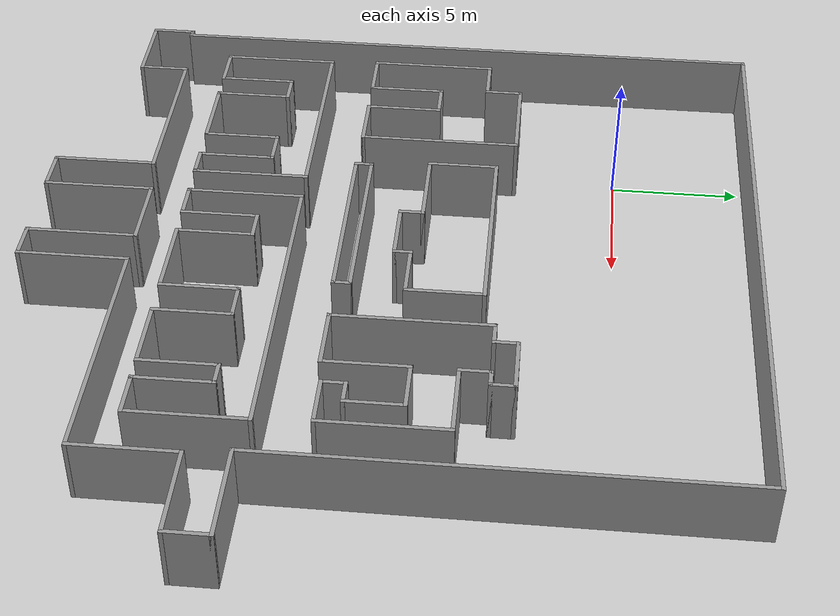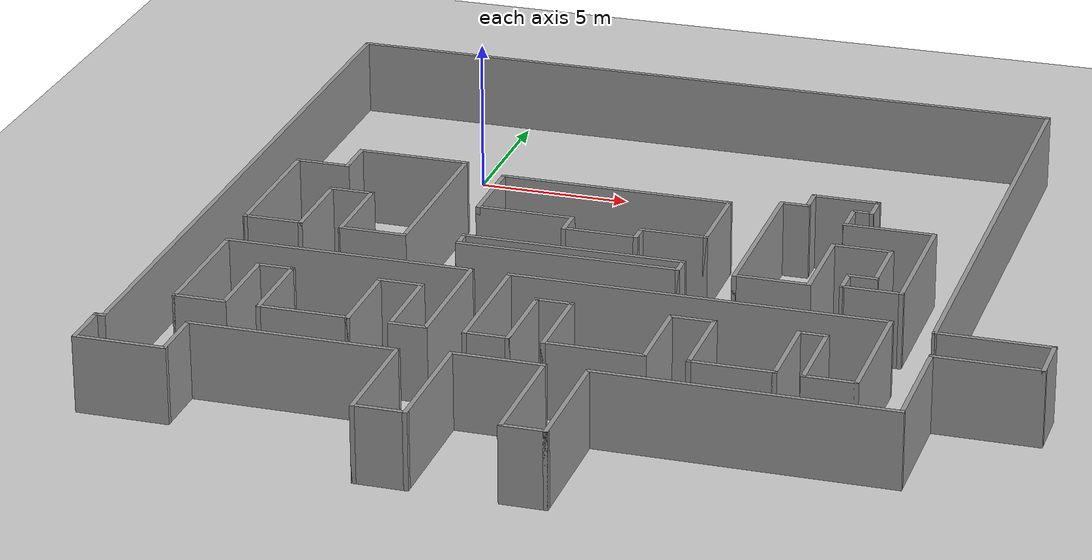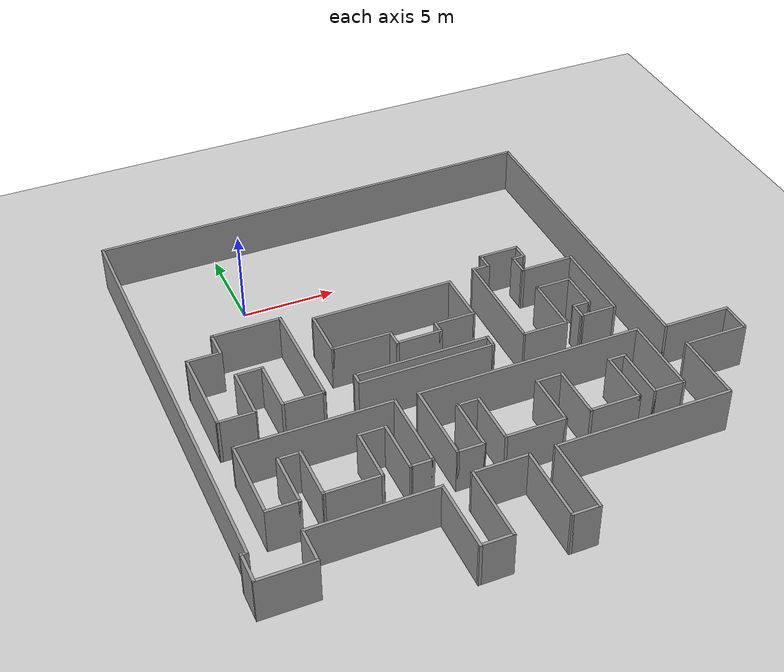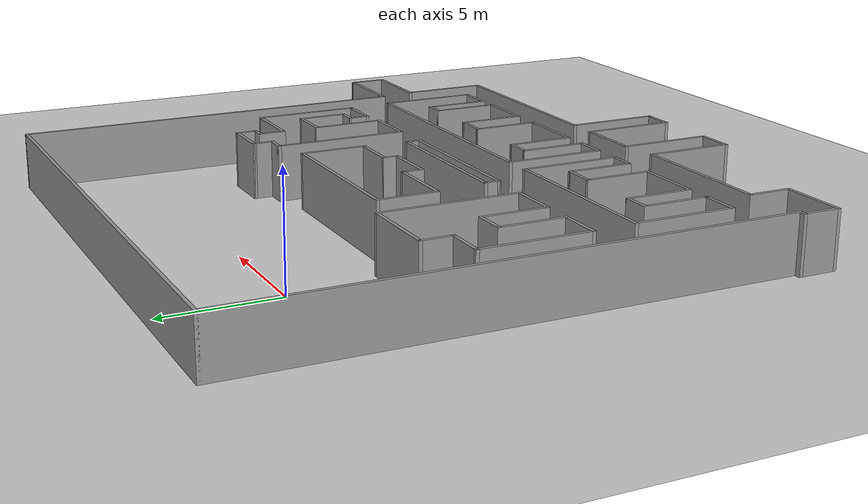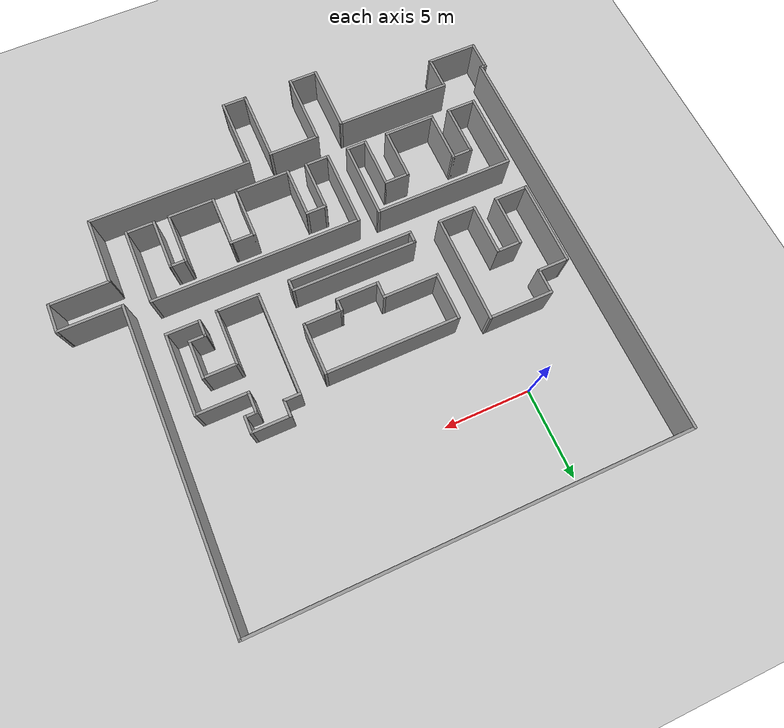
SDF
<sdf version="1.7">
 <world name="default">
  <model name="ground_plane">
   <static>1</static>
   <link name="link">
    <collision name="collision">
     <geometry><plane><normal>0 0 1</normal><size>100 100</size></plane></geometry>
     <surface>
      <contact><collide_bitmask>65535</collide_bitmask></contact>
      <friction><ode><mu>100</mu><mu2>50</mu2></ode></friction>
     </surface>
    </collision>
    <visual name="visual">
     <cast_shadows>0</cast_shadows>
     <geometry><plane><normal>0 0 1</normal><size>100 100</size></plane></geometry>
     <material>
      <script><uri>file://media/materials/scripts/gazebo.material</uri><name>Gazebo/Grey</name></script>
     </material>
    </visual>
   </link>
  </model>
  <model name="ACL_office_simple">
   <pose>7.7557 -8.2982 0 0 -0 0</pose>
   <link name="Wall_0">
    <collision name="Wall_0_Collision">
     <geometry><box><size>23.6998 0.15 2.5</size></box></geometry>
     <pose>0 0 1.25 0 -0 0</pose>
    </collision>
    <visual name="Wall_0_Visual">
     <pose>0 0 1.25 0 -0 0</pose>
     <geometry><box><size>23.6998 0.15 2.5</size></box></geometry>
     <material>
      <script><uri>file://media/materials/scripts/gazebo.material</uri><name>Gazebo/Grey</name></script>
      <ambient>1 1 1 1</ambient>
     </material>
     <meta><layer>0</layer></meta>
    </visual>
    <pose>-13.7248 1.80009 0 0 -0 -1.57078</pose>
   </link>
   <link name="Wall_10">
    <collision name="Wall_10_Collision">
     <geometry><box><size>9.5 0.15 2.5</size></box></geometry>
     <pose>0 0 1.25 0 -0 0</pose>
    </collision>
    <visual name="Wall_10_Visual">
     <pose>0 0 1.25 0 -0 0</pose>
     <geometry><box><size>9.5 0.15 2.5</size></box></geometry>
     <material>
      <script><uri>file://media/materials/scripts/gazebo.material</uri><name>Gazebo/Grey</name></script>
      <ambient>1 1 1 1</ambient>
     </material>
     <meta><layer>0</layer></meta>
    </visual>
    <pose>5.95001 -9.475 0 0 -0 3.14159</pose>
   </link>
   <link name="Wall_100">
    <collision name="Wall_100_Collision">
     <geometry><box><size>3 0.15 2.5</size></box></geometry>
     <pose>0 0 1.25 0 -0 0</pose>
    </collision>
    <visual name="Wall_100_Visual">
     <pose>0 0 1.25 0 -0 0</pose>
     <geometry><box><size>3 0.15 2.5</size></box></geometry>
     <material>
      <script><uri>file://media/materials/scripts/gazebo.material</uri><name>Gazebo/Grey</name></script>
      <ambient>1 1 1 1</ambient>
     </material>
     <meta><layer>0</layer></meta>
    </visual>
    <pose>2.02363 2.21088 0 0 -0 1.5708</pose>
   </link>
   <link name="Wall_101">
    <collision name="Wall_101_Collision">
     <geometry><box><size>7.7 0.15 2.5</size></box></geometry>
     <pose>0 0 1.25 0 -0 0</pose>
    </collision>
    <visual name="Wall_101_Visual">
     <pose>0 0 1.25 0 -0 0</pose>
     <geometry><box><size>7.7 0.15 2.5</size></box></geometry>
     <material>
      <script><uri>file://media/materials/scripts/gazebo.material</uri><name>Gazebo/Grey</name></script>
      <ambient>1 1 1 1</ambient>
     </material>
     <meta><layer>0</layer></meta>
    </visual>
    <pose>-1.75137 3.63588 0 0 -0 3.14159</pose>
   </link>
   <link name="Wall_11">
    <collision name="Wall_11_Collision">
     <geometry><box><size>4.25 0.15 2.5</size></box></geometry>
     <pose>0 0 1.25 0 -0 0</pose>
    </collision>
    <visual name="Wall_11_Visual">
     <pose>0 0 1.25 0 -0 0</pose>
     <geometry><box><size>4.25 0.15 2.5</size></box></geometry>
     <material>
      <script><uri>file://media/materials/scripts/gazebo.material</uri><name>Gazebo/Grey</name></script>
      <ambient>1 1 1 1</ambient>
     </material>
     <meta><layer>0</layer></meta>
    </visual>
    <pose>1.27501 -11.525 0 0 -0 -1.5708</pose>
   </link>
   <link name="Wall_12">
    <collision name="Wall_12_Collision">
     <geometry><box><size>1.5 0.15 2.5</size></box></geometry>
     <pose>0 0 1.25 0 -0 0</pose>
    </collision>
    <visual name="Wall_12_Visual">
     <pose>0 0 1.25 0 -0 0</pose>
     <geometry><box><size>1.5 0.15 2.5</size></box></geometry>
     <material>
      <script><uri>file://media/materials/scripts/gazebo.material</uri><name>Gazebo/Grey</name></script>
      <ambient>1 1 1 1</ambient>
     </material>
     <meta><layer>0</layer></meta>
    </visual>
    <pose>0.600008 -13.575 0 0 -0 3.14159</pose>
   </link>
   <link name="Wall_13">
    <collision name="Wall_13_Collision">
     <geometry><box><size>4.25 0.15 2.5</size></box></geometry>
     <pose>0 0 1.25 0 -0 0</pose>
    </collision>
    <visual name="Wall_13_Visual">
     <pose>0 0 1.25 0 -0 0</pose>
     <geometry><box><size>4.25 0.15 2.5</size></box></geometry>
     <material>
      <script><uri>file://media/materials/scripts/gazebo.material</uri><name>Gazebo/Grey</name></script>
      <ambient>1 1 1 1</ambient>
     </material>
     <meta><layer>0</layer></meta>
    </visual>
    <pose>-0.074992 -11.525 0 0 -0 1.5708</pose>
   </link>
   <link name="Wall_14">
    <collision name="Wall_14_Collision">
     <geometry><box><size>3 0.15 2.5</size></box></geometry>
     <pose>0 0 1.25 0 -0 0</pose>
    </collision>
    <visual name="Wall_14_Visual">
     <pose>0 0 1.25 0 -0 0</pose>
     <geometry><box><size>3 0.15 2.5</size></box></geometry>
     <material>
      <script><uri>file://media/materials/scripts/gazebo.material</uri><name>Gazebo/Grey</name></script>
      <ambient>1 1 1 1</ambient>
     </material>
     <meta><layer>0</layer></meta>
    </visual>
    <pose>-1.49999 -9.475 0 0 -0 3.14159</pose>
   </link>
   <link name="Wall_15">
    <collision name="Wall_15_Collision">
     <geometry><box><size>4.25 0.15 2.5</size></box></geometry>
     <pose>0 0 1.25 0 -0 0</pose>
    </collision>
    <visual name="Wall_15_Visual">
     <pose>0 0 1.25 0 -0 0</pose>
     <geometry><box><size>4.25 0.15 2.5</size></box></geometry>
     <material>
      <script><uri>file://media/materials/scripts/gazebo.material</uri><name>Gazebo/Grey</name></script>
      <ambient>1 1 1 1</ambient>
     </material>
     <meta><layer>0</layer></meta>
    </visual>
    <pose>-2.92499 -11.525 0 0 -0 -1.5708</pose>
   </link>
   <link name="Wall_16">
    <collision name="Wall_16_Collision">
     <geometry><box><size>1.75 0.15 2.5</size></box></geometry>
     <pose>0 0 1.25 0 -0 0</pose>
    </collision>
    <visual name="Wall_16_Visual">
     <pose>0 0 1.25 0 -0 0</pose>
     <geometry><box><size>1.75 0.15 2.5</size></box></geometry>
     <material>
      <script><uri>file://media/materials/scripts/gazebo.material</uri><name>Gazebo/Grey</name></script>
      <ambient>1 1 1 1</ambient>
     </material>
     <meta><layer>0</layer></meta>
    </visual>
    <pose>-3.72499 -13.575 0 0 -0 3.14159</pose>
   </link>
   <link name="Wall_17">
    <collision name="Wall_17_Collision">
     <geometry><box><size>4 0.15 2.5</size></box></geometry>
     <pose>0 0 1.25 0 -0 0</pose>
    </collision>
    <visual name="Wall_17_Visual">
     <pose>0 0 1.25 0 -0 0</pose>
     <geometry><box><size>4 0.15 2.5</size></box></geometry>
     <material>
      <script><uri>file://media/materials/scripts/gazebo.material</uri><name>Gazebo/Grey</name></script>
      <ambient>1 1 1 1</ambient>
     </material>
     <meta><layer>0</layer></meta>
    </visual>
    <pose>-4.52499 -11.65 0 0 -0 1.5708</pose>
   </link>
   <link name="Wall_18">
    <collision name="Wall_18_Collision">
     <geometry><box><size>6.75 0.15 2.5</size></box></geometry>
     <pose>0 0 1.25 0 -0 0</pose>
    </collision>
    <visual name="Wall_18_Visual">
     <pose>0 0 1.25 0 -0 0</pose>
     <geometry><box><size>6.75 0.15 2.5</size></box></geometry>
     <material>
      <script><uri>file://media/materials/scripts/gazebo.material</uri><name>Gazebo/Grey</name></script>
      <ambient>1 1 1 1</ambient>
     </material>
     <meta><layer>0</layer></meta>
    </visual>
    <pose>-7.82499 -9.725 0 0 -0 3.14159</pose>
   </link>
   <link name="Wall_19">
    <collision name="Wall_19_Collision">
     <geometry><box><size>2 0.15 2.5</size></box></geometry>
     <pose>0 0 1.25 0 -0 0</pose>
    </collision>
    <visual name="Wall_19_Visual">
     <pose>0 0 1.25 0 -0 0</pose>
     <geometry><box><size>2 0.15 2.5</size></box></geometry>
     <material>
      <script><uri>file://media/materials/scripts/gazebo.material</uri><name>Gazebo/Grey</name></script>
      <ambient>1 1 1 1</ambient>
     </material>
     <meta><layer>0</layer></meta>
    </visual>
    <pose>-11.125 -10.65 0 0 -0 -1.5708</pose>
   </link>
   <link name="Wall_2">
    <collision name="Wall_2_Collision">
     <geometry><box><size>24.25 0.15 2.5</size></box></geometry>
     <pose>0 0 1.25 0 -0 0</pose>
    </collision>
    <visual name="Wall_2_Visual">
     <pose>0 0 1.25 0 -0 0</pose>
     <geometry><box><size>24.25 0.15 2.5</size></box></geometry>
     <material>
      <script><uri>file://media/materials/scripts/gazebo.material</uri><name>Gazebo/Grey</name></script>
      <ambient>1 1 1 1</ambient>
     </material>
     <meta><layer>0</layer></meta>
    </visual>
    <pose>-1.67499 13.575 0 0 -0 0</pose>
   </link>
   <link name="Wall_20">
    <collision name="Wall_20_Collision">
     <geometry><box><size>3 0.15 2.5</size></box></geometry>
     <pose>0 0 1.25 0 -0 0</pose>
    </collision>
    <visual name="Wall_20_Visual">
     <pose>0 0 1.25 0 -0 0</pose>
     <geometry><box><size>3 0.15 2.5</size></box></geometry>
     <material>
      <script><uri>file://media/materials/scripts/gazebo.material</uri><name>Gazebo/Grey</name></script>
      <ambient>1 1 1 1</ambient>
     </material>
     <meta><layer>0</layer></meta>
    </visual>
    <pose>-12.55 -11.575 0 0 -0 3.14159</pose>
   </link>
   <link name="Wall_23">
    <collision name="Wall_23_Collision">
     <geometry><box><size>1.75 0.15 2.5</size></box></geometry>
     <pose>0 0 1.25 0 -0 0</pose>
    </collision>
    <visual name="Wall_23_Visual">
     <pose>0 0 1.25 0 -0 0</pose>
     <geometry><box><size>1.75 0.15 2.5</size></box></geometry>
     <material>
      <script><uri>file://media/materials/scripts/gazebo.material</uri><name>Gazebo/Grey</name></script>
      <ambient>1 1 1 1</ambient>
     </material>
     <meta><layer>0</layer></meta>
    </visual>
    <pose>-13.9748 -10.7749 0 0 -0 1.57059</pose>
   </link>
   <link name="Wall_24">
    <collision name="Wall_24_Collision">
     <geometry><box><size>0.4 0.15 2.5</size></box></geometry>
     <pose>0 0 1.25 0 -0 0</pose>
    </collision>
    <visual name="Wall_24_Visual">
     <pose>0 0 1.25 0 -0 0</pose>
     <geometry><box><size>0.4 0.15 2.5</size></box></geometry>
     <material>
      <script><uri>file://media/materials/scripts/gazebo.material</uri><name>Gazebo/Grey</name></script>
      <ambient>1 1 1 1</ambient>
     </material>
     <meta><layer>0</layer></meta>
    </visual>
    <pose>-13.8497 -9.97483 0 0 -0 0</pose>
   </link>
   <link name="Wall_27">
    <collision name="Wall_27_Collision">
     <geometry><box><size>4.5 0.15 2.5</size></box></geometry>
     <pose>0 0 1.25 0 -0 0</pose>
    </collision>
    <visual name="Wall_27_Visual">
     <pose>0 0 1.25 0 -0 0</pose>
     <geometry><box><size>4.5 0.15 2.5</size></box></geometry>
     <material>
      <script><uri>file://media/materials/scripts/gazebo.material</uri><name>Gazebo/Grey</name></script>
      <ambient>1 1 1 1</ambient>
     </material>
     <meta><layer>0</layer></meta>
    </visual>
    <pose>-12.2186 -5.84008 0 0 -0 -1.5708</pose>
   </link>
   <link name="Wall_28">
    <collision name="Wall_28_Collision">
     <geometry><box><size>1.75 0.15 2.5</size></box></geometry>
     <pose>0 0 1.25 0 -0 0</pose>
    </collision>
    <visual name="Wall_28_Visual">
     <pose>0 0 1.25 0 -0 0</pose>
     <geometry><box><size>1.75 0.15 2.5</size></box></geometry>
     <material>
      <script><uri>file://media/materials/scripts/gazebo.material</uri><name>Gazebo/Grey</name></script>
      <ambient>1 1 1 1</ambient>
     </material>
     <meta><layer>0</layer></meta>
    </visual>
    <pose>-11.4186 -8.01508 0 0 -0 0</pose>
   </link>
   <link name="Wall_29">
    <collision name="Wall_29_Collision">
     <geometry><box><size>3 0.15 2.5</size></box></geometry>
     <pose>0 0 1.25 0 -0 0</pose>
    </collision>
    <visual name="Wall_29_Visual">
     <pose>0 0 1.25 0 -0 0</pose>
     <geometry><box><size>3 0.15 2.5</size></box></geometry>
     <material>
      <script><uri>file://media/materials/scripts/gazebo.material</uri><name>Gazebo/Grey</name></script>
      <ambient>1 1 1 1</ambient>
     </material>
     <meta><layer>0</layer></meta>
    </visual>
    <pose>-10.6186 -6.59008 0 0 -0 1.5708</pose>
   </link>
   <link name="Wall_3">
    <collision name="Wall_3_Collision">
     <geometry><box><size>17.75 0.15 2.5</size></box></geometry>
     <pose>0 0 1.25 0 -0 0</pose>
    </collision>
    <visual name="Wall_3_Visual">
     <pose>0 0 1.25 0 -0 0</pose>
     <geometry><box><size>17.75 0.15 2.5</size></box></geometry>
     <material>
      <script><uri>file://media/materials/scripts/gazebo.material</uri><name>Gazebo/Grey</name></script>
      <ambient>1 1 1 1</ambient>
     </material>
     <meta><layer>0</layer></meta>
    </visual>
    <pose>10.375 4.775 0 0 -0 -1.5708</pose>
   </link>
   <link name="Wall_30">
    <collision name="Wall_30_Collision">
     <geometry><box><size>1.25 0.15 2.5</size></box></geometry>
     <pose>0 0 1.25 0 -0 0</pose>
    </collision>
    <visual name="Wall_30_Visual">
     <pose>0 0 1.25 0 -0 0</pose>
     <geometry><box><size>1.25 0.15 2.5</size></box></geometry>
     <material>
      <script><uri>file://media/materials/scripts/gazebo.material</uri><name>Gazebo/Grey</name></script>
      <ambient>1 1 1 1</ambient>
     </material>
     <meta><layer>0</layer></meta>
    </visual>
    <pose>-10.0686 -5.16508 0 0 -0 0</pose>
   </link>
   <link name="Wall_31">
    <collision name="Wall_31_Collision">
     <geometry><box><size>3 0.15 2.5</size></box></geometry>
     <pose>0 0 1.25 0 -0 0</pose>
    </collision>
    <visual name="Wall_31_Visual">
     <pose>0 0 1.25 0 -0 0</pose>
     <geometry><box><size>3 0.15 2.5</size></box></geometry>
     <material>
      <script><uri>file://media/materials/scripts/gazebo.material</uri><name>Gazebo/Grey</name></script>
      <ambient>1 1 1 1</ambient>
     </material>
     <meta><layer>0</layer></meta>
    </visual>
    <pose>-9.51863 -6.59008 0 0 -0 -1.5708</pose>
   </link>
   <link name="Wall_32">
    <collision name="Wall_32_Collision">
     <geometry><box><size>3 0.15 2.5</size></box></geometry>
     <pose>0 0 1.25 0 -0 0</pose>
    </collision>
    <visual name="Wall_32_Visual">
     <pose>0 0 1.25 0 -0 0</pose>
     <geometry><box><size>3 0.15 2.5</size></box></geometry>
     <material>
      <script><uri>file://media/materials/scripts/gazebo.material</uri><name>Gazebo/Grey</name></script>
      <ambient>1 1 1 1</ambient>
     </material>
     <meta><layer>0</layer></meta>
    </visual>
    <pose>-8.09363 -8.01508 0 0 -0 0</pose>
   </link>
   <link name="Wall_33">
    <collision name="Wall_33_Collision">
     <geometry><box><size>3 0.15 2.5</size></box></geometry>
     <pose>0 0 1.25 0 -0 0</pose>
    </collision>
    <visual name="Wall_33_Visual">
     <pose>0 0 1.25 0 -0 0</pose>
     <geometry><box><size>3 0.15 2.5</size></box></geometry>
     <material>
      <script><uri>file://media/materials/scripts/gazebo.material</uri><name>Gazebo/Grey</name></script>
      <ambient>1 1 1 1</ambient>
     </material>
     <meta><layer>0</layer></meta>
    </visual>
    <pose>-6.66863 -6.59008 0 0 -0 1.5708</pose>
   </link>
   <link name="Wall_34">
    <collision name="Wall_34_Collision">
     <geometry><box><size>1.5 0.15 2.5</size></box></geometry>
     <pose>0 0 1.25 0 -0 0</pose>
    </collision>
    <visual name="Wall_34_Visual">
     <pose>0 0 1.25 0 -0 0</pose>
     <geometry><box><size>1.5 0.15 2.5</size></box></geometry>
     <material>
      <script><uri>file://media/materials/scripts/gazebo.material</uri><name>Gazebo/Grey</name></script>
      <ambient>1 1 1 1</ambient>
     </material>
     <meta><layer>0</layer></meta>
    </visual>
    <pose>-5.99363 -5.16508 0 0 -0 0</pose>
   </link>
   <link name="Wall_35">
    <collision name="Wall_35_Collision">
     <geometry><box><size>3 0.15 2.5</size></box></geometry>
     <pose>0 0 1.25 0 -0 0</pose>
    </collision>
    <visual name="Wall_35_Visual">
     <pose>0 0 1.25 0 -0 0</pose>
     <geometry><box><size>3 0.15 2.5</size></box></geometry>
     <material>
      <script><uri>file://media/materials/scripts/gazebo.material</uri><name>Gazebo/Grey</name></script>
      <ambient>1 1 1 1</ambient>
     </material>
     <meta><layer>0</layer></meta>
    </visual>
    <pose>-5.31863 -6.59008 0 0 -0 -1.5708</pose>
   </link>
   <link name="Wall_36">
    <collision name="Wall_36_Collision">
     <geometry><box><size>1.25 0.15 2.5</size></box></geometry>
     <pose>0 0 1.25 0 -0 0</pose>
    </collision>
    <visual name="Wall_36_Visual">
     <pose>0 0 1.25 0 -0 0</pose>
     <geometry><box><size>1.25 0.15 2.5</size></box></geometry>
     <material>
      <script><uri>file://media/materials/scripts/gazebo.material</uri><name>Gazebo/Grey</name></script>
      <ambient>1 1 1 1</ambient>
     </material>
     <meta><layer>0</layer></meta>
    </visual>
    <pose>-4.76863 -8.01508 0 0 -0 0</pose>
   </link>
   <link name="Wall_37">
    <collision name="Wall_37_Collision">
     <geometry><box><size>4.5 0.15 2.5</size></box></geometry>
     <pose>0 0 1.25 0 -0 0</pose>
    </collision>
    <visual name="Wall_37_Visual">
     <pose>0 0 1.25 0 -0 0</pose>
     <geometry><box><size>4.5 0.15 2.5</size></box></geometry>
     <material>
      <script><uri>file://media/materials/scripts/gazebo.material</uri><name>Gazebo/Grey</name></script>
      <ambient>1 1 1 1</ambient>
     </material>
     <meta><layer>0</layer></meta>
    </visual>
    <pose>-4.21863 -5.84008 0 0 -0 1.5708</pose>
   </link>
   <link name="Wall_38">
    <collision name="Wall_38_Collision">
     <geometry><box><size>8.15 0.15 2.5</size></box></geometry>
     <pose>0 0 1.25 0 -0 0</pose>
    </collision>
    <visual name="Wall_38_Visual">
     <pose>0 0 1.25 0 -0 0</pose>
     <geometry><box><size>8.15 0.15 2.5</size></box></geometry>
     <material>
      <script><uri>file://media/materials/scripts/gazebo.material</uri><name>Gazebo/Grey</name></script>
      <ambient>1 1 1 1</ambient>
     </material>
     <meta><layer>0</layer></meta>
    </visual>
    <pose>-8.21863 -3.66508 0 0 -0 3.14159</pose>
   </link>
   <link name="Wall_40">
    <collision name="Wall_40_Collision">
     <geometry><box><size>4.5 0.15 2.5</size></box></geometry>
     <pose>0 0 1.25 0 -0 0</pose>
    </collision>
    <visual name="Wall_40_Visual">
     <pose>0 0 1.25 0 -0 0</pose>
     <geometry><box><size>4.5 0.15 2.5</size></box></geometry>
     <material>
      <script><uri>file://media/materials/scripts/gazebo.material</uri><name>Gazebo/Grey</name></script>
      <ambient>1 1 1 1</ambient>
     </material>
     <meta><layer>0</layer></meta>
    </visual>
    <pose>-2.99251 -5.83118 0 0 -0 -1.5708</pose>
   </link>
   <link name="Wall_41">
    <collision name="Wall_41_Collision">
     <geometry><box><size>1.5 0.15 2.5</size></box></geometry>
     <pose>0 0 1.25 0 -0 0</pose>
    </collision>
    <visual name="Wall_41_Visual">
     <pose>0 0 1.25 0 -0 0</pose>
     <geometry><box><size>1.5 0.15 2.5</size></box></geometry>
     <material>
      <script><uri>file://media/materials/scripts/gazebo.material</uri><name>Gazebo/Grey</name></script>
      <ambient>1 1 1 1</ambient>
     </material>
     <meta><layer>0</layer></meta>
    </visual>
    <pose>-2.31751 -8.00618 0 0 -0 0</pose>
   </link>
   <link name="Wall_42">
    <collision name="Wall_42_Collision">
     <geometry><box><size>3 0.15 2.5</size></box></geometry>
     <pose>0 0 1.25 0 -0 0</pose>
    </collision>
    <visual name="Wall_42_Visual">
     <pose>0 0 1.25 0 -0 0</pose>
     <geometry><box><size>3 0.15 2.5</size></box></geometry>
     <material>
      <script><uri>file://media/materials/scripts/gazebo.material</uri><name>Gazebo/Grey</name></script>
      <ambient>1 1 1 1</ambient>
     </material>
     <meta><layer>0</layer></meta>
    </visual>
    <pose>-1.64251 -6.58118 0 0 -0 1.5708</pose>
   </link>
   <link name="Wall_43">
    <collision name="Wall_43_Collision">
     <geometry><box><size>1.25 0.15 2.5</size></box></geometry>
     <pose>0 0 1.25 0 -0 0</pose>
    </collision>
    <visual name="Wall_43_Visual">
     <pose>0 0 1.25 0 -0 0</pose>
     <geometry><box><size>1.25 0.15 2.5</size></box></geometry>
     <material>
      <script><uri>file://media/materials/scripts/gazebo.material</uri><name>Gazebo/Grey</name></script>
      <ambient>1 1 1 1</ambient>
     </material>
     <meta><layer>0</layer></meta>
    </visual>
    <pose>-1.09251 -5.15618 0 0 -0 0</pose>
   </link>
   <link name="Wall_44">
    <collision name="Wall_44_Collision">
     <geometry><box><size>3 0.15 2.5</size></box></geometry>
     <pose>0 0 1.25 0 -0 0</pose>
    </collision>
    <visual name="Wall_44_Visual">
     <pose>0 0 1.25 0 -0 0</pose>
     <geometry><box><size>3 0.15 2.5</size></box></geometry>
     <material>
      <script><uri>file://media/materials/scripts/gazebo.material</uri><name>Gazebo/Grey</name></script>
      <ambient>1 1 1 1</ambient>
     </material>
     <meta><layer>0</layer></meta>
    </visual>
    <pose>-0.542511 -6.58118 0 0 -0 -1.5708</pose>
   </link>
   <link name="Wall_45">
    <collision name="Wall_45_Collision">
     <geometry><box><size>3.25 0.15 2.5</size></box></geometry>
     <pose>0 0 1.25 0 -0 0</pose>
    </collision>
    <visual name="Wall_45_Visual">
     <pose>0 0 1.25 0 -0 0</pose>
     <geometry><box><size>3.25 0.15 2.5</size></box></geometry>
     <material>
      <script><uri>file://media/materials/scripts/gazebo.material</uri><name>Gazebo/Grey</name></script>
      <ambient>1 1 1 1</ambient>
     </material>
     <meta><layer>0</layer></meta>
    </visual>
    <pose>1.00749 -8.00618 0 0 -0 0</pose>
   </link>
   <link name="Wall_46">
    <collision name="Wall_46_Collision">
     <geometry><box><size>3 0.15 2.5</size></box></geometry>
     <pose>0 0 1.25 0 -0 0</pose>
    </collision>
    <visual name="Wall_46_Visual">
     <pose>0 0 1.25 0 -0 0</pose>
     <geometry><box><size>3 0.15 2.5</size></box></geometry>
     <material>
      <script><uri>file://media/materials/scripts/gazebo.material</uri><name>Gazebo/Grey</name></script>
      <ambient>1 1 1 1</ambient>
     </material>
     <meta><layer>0</layer></meta>
    </visual>
    <pose>2.55749 -6.58118 0 0 -0 1.5708</pose>
   </link>
   <link name="Wall_47">
    <collision name="Wall_47_Collision">
     <geometry><box><size>1.5 0.15 2.5</size></box></geometry>
     <pose>0 0 1.25 0 -0 0</pose>
    </collision>
    <visual name="Wall_47_Visual">
     <pose>0 0 1.25 0 -0 0</pose>
     <geometry><box><size>1.5 0.15 2.5</size></box></geometry>
     <material>
      <script><uri>file://media/materials/scripts/gazebo.material</uri><name>Gazebo/Grey</name></script>
      <ambient>1 1 1 1</ambient>
     </material>
     <meta><layer>0</layer></meta>
    </visual>
    <pose>3.23249 -5.15618 0 0 -0 0</pose>
   </link>
   <link name="Wall_48">
    <collision name="Wall_48_Collision">
     <geometry><box><size>3 0.15 2.5</size></box></geometry>
     <pose>0 0 1.25 0 -0 0</pose>
    </collision>
    <visual name="Wall_48_Visual">
     <pose>0 0 1.25 0 -0 0</pose>
     <geometry><box><size>3 0.15 2.5</size></box></geometry>
     <material>
      <script><uri>file://media/materials/scripts/gazebo.material</uri><name>Gazebo/Grey</name></script>
      <ambient>1 1 1 1</ambient>
     </material>
     <meta><layer>0</layer></meta>
    </visual>
    <pose>3.90749 -6.58118 0 0 -0 -1.5708</pose>
   </link>
   <link name="Wall_49">
    <collision name="Wall_49_Collision">
     <geometry><box><size>2.75 0.15 2.5</size></box></geometry>
     <pose>0 0 1.25 0 -0 0</pose>
    </collision>
    <visual name="Wall_49_Visual">
     <pose>0 0 1.25 0 -0 0</pose>
     <geometry><box><size>2.75 0.15 2.5</size></box></geometry>
     <material>
      <script><uri>file://media/materials/scripts/gazebo.material</uri><name>Gazebo/Grey</name></script>
      <ambient>1 1 1 1</ambient>
     </material>
     <meta><layer>0</layer></meta>
    </visual>
    <pose>5.20749 -8.00618 0 0 -0 0</pose>
   </link>
   <link name="Wall_50">
    <collision name="Wall_50_Collision">
     <geometry><box><size>3 0.15 2.5</size></box></geometry>
     <pose>0 0 1.25 0 -0 0</pose>
    </collision>
    <visual name="Wall_50_Visual">
     <pose>0 0 1.25 0 -0 0</pose>
     <geometry><box><size>3 0.15 2.5</size></box></geometry>
     <material>
      <script><uri>file://media/materials/scripts/gazebo.material</uri><name>Gazebo/Grey</name></script>
      <ambient>1 1 1 1</ambient>
     </material>
     <meta><layer>0</layer></meta>
    </visual>
    <pose>6.50749 -6.58118 0 0 -0 1.5708</pose>
   </link>
   <link name="Wall_51">
    <collision name="Wall_51_Collision">
     <geometry><box><size>1 0.15 2.5</size></box></geometry>
     <pose>0 0 1.25 0 -0 0</pose>
    </collision>
    <visual name="Wall_51_Visual">
     <pose>0 0 1.25 0 -0 0</pose>
     <geometry><box><size>1 0.15 2.5</size></box></geometry>
     <material>
      <script><uri>file://media/materials/scripts/gazebo.material</uri><name>Gazebo/Grey</name></script>
      <ambient>1 1 1 1</ambient>
     </material>
     <meta><layer>0</layer></meta>
    </visual>
    <pose>6.93249 -5.15618 0 0 -0 0</pose>
   </link>
   <link name="Wall_52">
    <collision name="Wall_52_Collision">
     <geometry><box><size>3 0.15 2.5</size></box></geometry>
     <pose>0 0 1.25 0 -0 0</pose>
    </collision>
    <visual name="Wall_52_Visual">
     <pose>0 0 1.25 0 -0 0</pose>
     <geometry><box><size>3 0.15 2.5</size></box></geometry>
     <material>
      <script><uri>file://media/materials/scripts/gazebo.material</uri><name>Gazebo/Grey</name></script>
      <ambient>1 1 1 1</ambient>
     </material>
     <meta><layer>0</layer></meta>
    </visual>
    <pose>7.35749 -6.58118 0 0 -0 -1.5708</pose>
   </link>
   <link name="Wall_53">
    <collision name="Wall_53_Collision">
     <geometry><box><size>1.75 0.15 2.5</size></box></geometry>
     <pose>0 0 1.25 0 -0 0</pose>
    </collision>
    <visual name="Wall_53_Visual">
     <pose>0 0 1.25 0 -0 0</pose>
     <geometry><box><size>1.75 0.15 2.5</size></box></geometry>
     <material>
      <script><uri>file://media/materials/scripts/gazebo.material</uri><name>Gazebo/Grey</name></script>
      <ambient>1 1 1 1</ambient>
     </material>
     <meta><layer>0</layer></meta>
    </visual>
    <pose>8.15749 -8.00618 0 0 -0 0</pose>
   </link>
   <link name="Wall_54">
    <collision name="Wall_54_Collision">
     <geometry><box><size>4.5 0.15 2.5</size></box></geometry>
     <pose>0 0 1.25 0 -0 0</pose>
    </collision>
    <visual name="Wall_54_Visual">
     <pose>0 0 1.25 0 -0 0</pose>
     <geometry><box><size>4.5 0.15 2.5</size></box></geometry>
     <material>
      <script><uri>file://media/materials/scripts/gazebo.material</uri><name>Gazebo/Grey</name></script>
      <ambient>1 1 1 1</ambient>
     </material>
     <meta><layer>0</layer></meta>
    </visual>
    <pose>8.95749 -5.83118 0 0 -0 1.5708</pose>
   </link>
   <link name="Wall_55">
    <collision name="Wall_55_Collision">
     <geometry><box><size>12.1 0.15 2.5</size></box></geometry>
     <pose>0 0 1.25 0 -0 0</pose>
    </collision>
    <visual name="Wall_55_Visual">
     <pose>0 0 1.25 0 -0 0</pose>
     <geometry><box><size>12.1 0.15 2.5</size></box></geometry>
     <material>
      <script><uri>file://media/materials/scripts/gazebo.material</uri><name>Gazebo/Grey</name></script>
      <ambient>1 1 1 1</ambient>
     </material>
     <meta><layer>0</layer></meta>
    </visual>
    <pose>2.98249 -3.65618 0 0 -0 3.14159</pose>
   </link>
   <link name="Wall_57">
    <collision name="Wall_57_Collision">
     <geometry><box><size>0.75 0.15 2.5</size></box></geometry>
     <pose>0 0 1.25 0 -0 0</pose>
    </collision>
    <visual name="Wall_57_Visual">
     <pose>0 0 1.25 0 -0 0</pose>
     <geometry><box><size>0.75 0.15 2.5</size></box></geometry>
     <material>
      <script><uri>file://media/materials/scripts/gazebo.material</uri><name>Gazebo/Grey</name></script>
      <ambient>1 1 1 1</ambient>
     </material>
     <meta><layer>0</layer></meta>
    </visual>
    <pose>-5.25106 -1.52796 0 0 -0 -1.5708</pose>
   </link>
   <link name="Wall_58">
    <collision name="Wall_58_Collision">
     <geometry><box><size>7.25 0.15 2.5</size></box></geometry>
     <pose>0 0 1.25 0 -0 0</pose>
    </collision>
    <visual name="Wall_58_Visual">
     <pose>0 0 1.25 0 -0 0</pose>
     <geometry><box><size>7.25 0.15 2.5</size></box></geometry>
     <material>
      <script><uri>file://media/materials/scripts/gazebo.material</uri><name>Gazebo/Grey</name></script>
      <ambient>1 1 1 1</ambient>
     </material>
     <meta><layer>0</layer></meta>
    </visual>
    <pose>-1.70106 -1.82796 0 0 -0 0</pose>
   </link>
   <link name="Wall_59">
    <collision name="Wall_59_Collision">
     <geometry><box><size>0.75 0.15 2.5</size></box></geometry>
     <pose>0 0 1.25 0 -0 0</pose>
    </collision>
    <visual name="Wall_59_Visual">
     <pose>0 0 1.25 0 -0 0</pose>
     <geometry><box><size>0.75 0.15 2.5</size></box></geometry>
     <material>
      <script><uri>file://media/materials/scripts/gazebo.material</uri><name>Gazebo/Grey</name></script>
      <ambient>1 1 1 1</ambient>
     </material>
     <meta><layer>0</layer></meta>
    </visual>
    <pose>1.84894 -1.52796 0 0 -0 1.5708</pose>
   </link>
   <link name="Wall_6">
    <collision name="Wall_6_Collision">
     <geometry><box><size>3.75 0.15 2.5</size></box></geometry>
     <pose>0 0 1.25 0 -0 0</pose>
    </collision>
    <visual name="Wall_6_Visual">
     <pose>0 0 1.25 0 -0 0</pose>
     <geometry><box><size>3.75 0.15 2.5</size></box></geometry>
     <material>
      <script><uri>file://media/materials/scripts/gazebo.material</uri><name>Gazebo/Grey</name></script>
      <ambient>1 1 1 1</ambient>
     </material>
     <meta><layer>0</layer></meta>
    </visual>
    <pose>12.175 -4.025 0 0 -0 0</pose>
   </link>
   <link name="Wall_60">
    <collision name="Wall_60_Collision">
     <geometry><box><size>7.25 0.15 2.5</size></box></geometry>
     <pose>0 0 1.25 0 -0 0</pose>
    </collision>
    <visual name="Wall_60_Visual">
     <pose>0 0 1.25 0 -0 0</pose>
     <geometry><box><size>7.25 0.15 2.5</size></box></geometry>
     <material>
      <script><uri>file://media/materials/scripts/gazebo.material</uri><name>Gazebo/Grey</name></script>
      <ambient>1 1 1 1</ambient>
     </material>
     <meta><layer>0</layer></meta>
    </visual>
    <pose>-1.70106 -1.22796 0 0 -0 3.14159</pose>
   </link>
   <link name="Wall_64">
    <collision name="Wall_64_Collision">
     <geometry><box><size>4.89992 0.15 2.5</size></box></geometry>
     <pose>0 0 1.25 0 -0 0</pose>
    </collision>
    <visual name="Wall_64_Visual">
     <pose>0 0 1.25 0 -0 0</pose>
     <geometry><box><size>4.89992 0.15 2.5</size></box></geometry>
     <material>
      <script><uri>file://media/materials/scripts/gazebo.material</uri><name>Gazebo/Grey</name></script>
      <ambient>1 1 1 1</ambient>
     </material>
     <meta><layer>0</layer></meta>
    </visual>
    <pose>-12.3478 0.610215 0 0 -0 -1.57087</pose>
   </link>
   <link name="Wall_65">
    <collision name="Wall_65_Collision">
     <geometry><box><size>2 0.15 2.5</size></box></geometry>
     <pose>0 0 1.25 0 -0 0</pose>
    </collision>
    <visual name="Wall_65_Visual">
     <pose>0 0 1.25 0 -0 0</pose>
     <geometry><box><size>2 0.15 2.5</size></box></geometry>
     <material>
      <script><uri>file://media/materials/scripts/gazebo.material</uri><name>Gazebo/Grey</name></script>
      <ambient>1 1 1 1</ambient>
     </material>
     <meta><layer>0</layer></meta>
    </visual>
    <pose>-11.423 -1.76474 0 0 -0 0</pose>
   </link>
   <link name="Wall_66">
    <collision name="Wall_66_Collision">
     <geometry><box><size>3 0.15 2.5</size></box></geometry>
     <pose>0 0 1.25 0 -0 0</pose>
    </collision>
    <visual name="Wall_66_Visual">
     <pose>0 0 1.25 0 -0 0</pose>
     <geometry><box><size>3 0.15 2.5</size></box></geometry>
     <material>
      <script><uri>file://media/materials/scripts/gazebo.material</uri><name>Gazebo/Grey</name></script>
      <ambient>1 1 1 1</ambient>
     </material>
     <meta><layer>0</layer></meta>
    </visual>
    <pose>-10.498 -0.339742 0 0 -0 1.5708</pose>
   </link>
   <link name="Wall_67">
    <collision name="Wall_67_Collision">
     <geometry><box><size>1.5 0.15 2.5</size></box></geometry>
     <pose>0 0 1.25 0 -0 0</pose>
    </collision>
    <visual name="Wall_67_Visual">
     <pose>0 0 1.25 0 -0 0</pose>
     <geometry><box><size>1.5 0.15 2.5</size></box></geometry>
     <material>
      <script><uri>file://media/materials/scripts/gazebo.material</uri><name>Gazebo/Grey</name></script>
      <ambient>1 1 1 1</ambient>
     </material>
     <meta><layer>0</layer></meta>
    </visual>
    <pose>-9.823 1.08526 0 0 -0 0</pose>
   </link>
   <link name="Wall_68">
    <collision name="Wall_68_Collision">
     <geometry><box><size>3 0.15 2.5</size></box></geometry>
     <pose>0 0 1.25 0 -0 0</pose>
    </collision>
    <visual name="Wall_68_Visual">
     <pose>0 0 1.25 0 -0 0</pose>
     <geometry><box><size>3 0.15 2.5</size></box></geometry>
     <material>
      <script><uri>file://media/materials/scripts/gazebo.material</uri><name>Gazebo/Grey</name></script>
      <ambient>1 1 1 1</ambient>
     </material>
     <meta><layer>0</layer></meta>
    </visual>
    <pose>-9.14799 -0.339742 0 0 -0 -1.5708</pose>
   </link>
   <link name="Wall_69">
    <collision name="Wall_69_Collision">
     <geometry><box><size>2.25 0.15 2.5</size></box></geometry>
     <pose>0 0 1.25 0 -0 0</pose>
    </collision>
    <visual name="Wall_69_Visual">
     <pose>0 0 1.25 0 -0 0</pose>
     <geometry><box><size>2.25 0.15 2.5</size></box></geometry>
     <material>
      <script><uri>file://media/materials/scripts/gazebo.material</uri><name>Gazebo/Grey</name></script>
      <ambient>1 1 1 1</ambient>
     </material>
     <meta><layer>0</layer></meta>
    </visual>
    <pose>-8.09799 -1.76474 0 0 -0 0</pose>
   </link>
   <link name="Wall_7">
    <collision name="Wall_7_Collision">
     <geometry><box><size>1.75 0.15 2.5</size></box></geometry>
     <pose>0 0 1.25 0 -0 0</pose>
    </collision>
    <visual name="Wall_7_Visual">
     <pose>0 0 1.25 0 -0 0</pose>
     <geometry><box><size>1.75 0.15 2.5</size></box></geometry>
     <material>
      <script><uri>file://media/materials/scripts/gazebo.material</uri><name>Gazebo/Grey</name></script>
      <ambient>1 1 1 1</ambient>
     </material>
     <meta><layer>0</layer></meta>
    </visual>
    <pose>13.975 -4.825 0 0 -0 -1.5708</pose>
   </link>
   <link name="Wall_70">
    <collision name="Wall_70_Collision">
     <geometry><box><size>6.25 0.15 2.5</size></box></geometry>
     <pose>0 0 1.25 0 -0 0</pose>
    </collision>
    <visual name="Wall_70_Visual">
     <pose>0 0 1.25 0 -0 0</pose>
     <geometry><box><size>6.25 0.15 2.5</size></box></geometry>
     <material>
      <script><uri>file://media/materials/scripts/gazebo.material</uri><name>Gazebo/Grey</name></script>
      <ambient>1 1 1 1</ambient>
     </material>
     <meta><layer>0</layer></meta>
    </visual>
    <pose>-7.048 1.28526 0 0 -0 1.5708</pose>
   </link>
   <link name="Wall_71">
    <collision name="Wall_71_Collision">
     <geometry><box><size>3.75 0.15 2.5</size></box></geometry>
     <pose>0 0 1.25 0 -0 0</pose>
    </collision>
    <visual name="Wall_71_Visual">
     <pose>0 0 1.25 0 -0 0</pose>
     <geometry><box><size>3.75 0.15 2.5</size></box></geometry>
     <material>
      <script><uri>file://media/materials/scripts/gazebo.material</uri><name>Gazebo/Grey</name></script>
      <ambient>1 1 1 1</ambient>
     </material>
     <meta><layer>0</layer></meta>
    </visual>
    <pose>-8.84799 4.33526 0 0 -0 3.14159</pose>
   </link>
   <link name="Wall_72">
    <collision name="Wall_72_Collision">
     <geometry><box><size>1.5 0.15 2.5</size></box></geometry>
     <pose>0 0 1.25 0 -0 0</pose>
    </collision>
    <visual name="Wall_72_Visual">
     <pose>0 0 1.25 0 -0 0</pose>
     <geometry><box><size>1.5 0.15 2.5</size></box></geometry>
     <material>
      <script><uri>file://media/materials/scripts/gazebo.material</uri><name>Gazebo/Grey</name></script>
      <ambient>1 1 1 1</ambient>
     </material>
     <meta><layer>0</layer></meta>
    </visual>
    <pose>-10.6478 3.66021 0 0 -0 -1.57055</pose>
   </link>
   <link name="Wall_73">
    <collision name="Wall_73_Collision">
     <geometry><box><size>1.85 0.15 2.5</size></box></geometry>
     <pose>0 0 1.25 0 -0 0</pose>
    </collision>
    <visual name="Wall_73_Visual">
     <pose>0 0 1.25 0 -0 0</pose>
     <geometry><box><size>1.85 0.15 2.5</size></box></geometry>
     <material>
      <script><uri>file://media/materials/scripts/gazebo.material</uri><name>Gazebo/Grey</name></script>
      <ambient>1 1 1 1</ambient>
     </material>
     <meta><layer>0</layer></meta>
    </visual>
    <pose>-11.4977 2.98517 0 0 -0 3.14159</pose>
   </link>
   <link name="Wall_75">
    <collision name="Wall_75_Collision">
     <geometry><box><size>4.75 0.15 2.5</size></box></geometry>
     <pose>0 0 1.25 0 -0 0</pose>
    </collision>
    <visual name="Wall_75_Visual">
     <pose>0 0 1.25 0 -0 0</pose>
     <geometry><box><size>4.75 0.15 2.5</size></box></geometry>
     <material>
      <script><uri>file://media/materials/scripts/gazebo.material</uri><name>Gazebo/Grey</name></script>
      <ambient>1 1 1 1</ambient>
     </material>
     <meta><layer>0</layer></meta>
    </visual>
    <pose>8.82039 0.705063 0 0 -0 1.57077</pose>
   </link>
   <link name="Wall_76">
    <collision name="Wall_76_Collision">
     <geometry><box><size>3 0.15 2.5</size></box></geometry>
     <pose>0 0 1.25 0 -0 0</pose>
    </collision>
    <visual name="Wall_76_Visual">
     <pose>0 0 1.25 0 -0 0</pose>
     <geometry><box><size>3 0.15 2.5</size></box></geometry>
     <material>
      <script><uri>file://media/materials/scripts/gazebo.material</uri><name>Gazebo/Grey</name></script>
      <ambient>1 1 1 1</ambient>
     </material>
     <meta><layer>0</layer></meta>
    </visual>
    <pose>7.39544 3.00495 0 0 -0 3.14159</pose>
   </link>
   <link name="Wall_77">
    <collision name="Wall_77_Collision">
     <geometry><box><size>1.25 0.15 2.5</size></box></geometry>
     <pose>0 0 1.25 0 -0 0</pose>
    </collision>
    <visual name="Wall_77_Visual">
     <pose>0 0 1.25 0 -0 0</pose>
     <geometry><box><size>1.25 0.15 2.5</size></box></geometry>
     <material>
      <script><uri>file://media/materials/scripts/gazebo.material</uri><name>Gazebo/Grey</name></script>
      <ambient>1 1 1 1</ambient>
     </material>
     <meta><layer>0</layer></meta>
    </visual>
    <pose>5.97044 3.55495 0 0 -0 1.5708</pose>
   </link>
   <link name="Wall_78">
    <collision name="Wall_78_Collision">
     <geometry><box><size>0.75 0.15 2.5</size></box></geometry>
     <pose>0 0 1.25 0 -0 0</pose>
    </collision>
    <visual name="Wall_78_Visual">
     <pose>0 0 1.25 0 -0 0</pose>
     <geometry><box><size>0.75 0.15 2.5</size></box></geometry>
     <material>
      <script><uri>file://media/materials/scripts/gazebo.material</uri><name>Gazebo/Grey</name></script>
      <ambient>1 1 1 1</ambient>
     </material>
     <meta><layer>0</layer></meta>
    </visual>
    <pose>6.27044 4.10495 0 0 -0 0</pose>
   </link>
   <link name="Wall_79">
    <collision name="Wall_79_Collision">
     <geometry><box><size>1 0.15 2.5</size></box></geometry>
     <pose>0 0 1.25 0 -0 0</pose>
    </collision>
    <visual name="Wall_79_Visual">
     <pose>0 0 1.25 0 -0 0</pose>
     <geometry><box><size>1 0.15 2.5</size></box></geometry>
     <material>
      <script><uri>file://media/materials/scripts/gazebo.material</uri><name>Gazebo/Grey</name></script>
      <ambient>1 1 1 1</ambient>
     </material>
     <meta><layer>0</layer></meta>
    </visual>
    <pose>6.57044 4.52995 0 0 -0 1.5708</pose>
   </link>
   <link name="Wall_8">
    <collision name="Wall_8_Collision">
     <geometry><box><size>3.5 0.15 2.5</size></box></geometry>
     <pose>0 0 1.25 0 -0 0</pose>
    </collision>
    <visual name="Wall_8_Visual">
     <pose>0 0 1.25 0 -0 0</pose>
     <geometry><box><size>3.5 0.15 2.5</size></box></geometry>
     <material>
      <script><uri>file://media/materials/scripts/gazebo.material</uri><name>Gazebo/Grey</name></script>
      <ambient>1 1 1 1</ambient>
     </material>
     <meta><layer>0</layer></meta>
    </visual>
    <pose>12.3 -5.625 0 0 -0 3.14159</pose>
   </link>
   <link name="Wall_80">
    <collision name="Wall_80_Collision">
     <geometry><box><size>2.25 0.15 2.5</size></box></geometry>
     <pose>0 0 1.25 0 -0 0</pose>
    </collision>
    <visual name="Wall_80_Visual">
     <pose>0 0 1.25 0 -0 0</pose>
     <geometry><box><size>2.25 0.15 2.5</size></box></geometry>
     <material>
      <script><uri>file://media/materials/scripts/gazebo.material</uri><name>Gazebo/Grey</name></script>
      <ambient>1 1 1 1</ambient>
     </material>
     <meta><layer>0</layer></meta>
    </visual>
    <pose>5.52044 4.95495 0 0 -0 3.14159</pose>
   </link>
   <link name="Wall_81">
    <collision name="Wall_81_Collision">
     <geometry><box><size>1 0.15 2.5</size></box></geometry>
     <pose>0 0 1.25 0 -0 0</pose>
    </collision>
    <visual name="Wall_81_Visual">
     <pose>0 0 1.25 0 -0 0</pose>
     <geometry><box><size>1 0.15 2.5</size></box></geometry>
     <material>
      <script><uri>file://media/materials/scripts/gazebo.material</uri><name>Gazebo/Grey</name></script>
      <ambient>1 1 1 1</ambient>
     </material>
     <meta><layer>0</layer></meta>
    </visual>
    <pose>4.47044 4.52995 0 0 -0 -1.5708</pose>
   </link>
   <link name="Wall_84">
    <collision name="Wall_84_Collision">
     <geometry><box><size>1 0.15 2.5</size></box></geometry>
     <pose>0 0 1.25 0 -0 0</pose>
    </collision>
    <visual name="Wall_84_Visual">
     <pose>0 0 1.25 0 -0 0</pose>
     <geometry><box><size>1 0.15 2.5</size></box></geometry>
     <material>
      <script><uri>file://media/materials/scripts/gazebo.material</uri><name>Gazebo/Grey</name></script>
      <ambient>1 1 1 1</ambient>
     </material>
     <meta><layer>0</layer></meta>
    </visual>
    <pose>4.04544 4.10495 0 0 -0 3.14159</pose>
   </link>
   <link name="Wall_85">
    <collision name="Wall_85_Collision">
     <geometry><box><size>6 0.15 2.5</size></box></geometry>
     <pose>0 0 1.25 0 -0 0</pose>
    </collision>
    <visual name="Wall_85_Visual">
     <pose>0 0 1.25 0 -0 0</pose>
     <geometry><box><size>6 0.15 2.5</size></box></geometry>
     <material>
      <script><uri>file://media/materials/scripts/gazebo.material</uri><name>Gazebo/Grey</name></script>
      <ambient>1 1 1 1</ambient>
     </material>
     <meta><layer>0</layer></meta>
    </visual>
    <pose>3.62044 1.17995 0 0 -0 -1.5708</pose>
   </link>
   <link name="Wall_86">
    <collision name="Wall_86_Collision">
     <geometry><box><size>2.5 0.15 2.5</size></box></geometry>
     <pose>0 0 1.25 0 -0 0</pose>
    </collision>
    <visual name="Wall_86_Visual">
     <pose>0 0 1.25 0 -0 0</pose>
     <geometry><box><size>2.5 0.15 2.5</size></box></geometry>
     <material>
      <script><uri>file://media/materials/scripts/gazebo.material</uri><name>Gazebo/Grey</name></script>
      <ambient>1 1 1 1</ambient>
     </material>
     <meta><layer>0</layer></meta>
    </visual>
    <pose>4.79544 -1.74505 0 0 -0 0</pose>
   </link>
   <link name="Wall_87">
    <collision name="Wall_87_Collision">
     <geometry><box><size>3.25 0.15 2.5</size></box></geometry>
     <pose>0 0 1.25 0 -0 0</pose>
    </collision>
    <visual name="Wall_87_Visual">
     <pose>0 0 1.25 0 -0 0</pose>
     <geometry><box><size>3.25 0.15 2.5</size></box></geometry>
     <material>
      <script><uri>file://media/materials/scripts/gazebo.material</uri><name>Gazebo/Grey</name></script>
      <ambient>1 1 1 1</ambient>
     </material>
     <meta><layer>0</layer></meta>
    </visual>
    <pose>5.97044 -0.195047 0 0 -0 1.5708</pose>
   </link>
   <link name="Wall_88">
    <collision name="Wall_88_Collision">
     <geometry><box><size>2 0.15 2.5</size></box></geometry>
     <pose>0 0 1.25 0 -0 0</pose>
    </collision>
    <visual name="Wall_88_Visual">
     <pose>0 0 1.25 0 -0 0</pose>
     <geometry><box><size>2 0.15 2.5</size></box></geometry>
     <material>
      <script><uri>file://media/materials/scripts/gazebo.material</uri><name>Gazebo/Grey</name></script>
      <ambient>1 1 1 1</ambient>
     </material>
     <meta><layer>0</layer></meta>
    </visual>
    <pose>6.89544 1.35495 0 0 -0 0</pose>
   </link>
   <link name="Wall_89">
    <collision name="Wall_89_Collision">
     <geometry><box><size>2.25 0.15 2.5</size></box></geometry>
     <pose>0 0 1.25 0 -0 0</pose>
    </collision>
    <visual name="Wall_89_Visual">
     <pose>0 0 1.25 0 -0 0</pose>
     <geometry><box><size>2.25 0.15 2.5</size></box></geometry>
     <material>
      <script><uri>file://media/materials/scripts/gazebo.material</uri><name>Gazebo/Grey</name></script>
      <ambient>1 1 1 1</ambient>
     </material>
     <meta><layer>0</layer></meta>
    </visual>
    <pose>7.82044 0.304953 0 0 -0 -1.5708</pose>
   </link>
   <link name="Wall_9">
    <collision name="Wall_9_Collision">
     <geometry><box><size>4 0.15 2.5</size></box></geometry>
     <pose>0 0 1.25 0 -0 0</pose>
    </collision>
    <visual name="Wall_9_Visual">
     <pose>0 0 1.25 0 -0 0</pose>
     <geometry><box><size>4 0.15 2.5</size></box></geometry>
     <material>
      <script><uri>file://media/materials/scripts/gazebo.material</uri><name>Gazebo/Grey</name></script>
      <ambient>1 1 1 1</ambient>
     </material>
     <meta><layer>0</layer></meta>
    </visual>
    <pose>10.625 -7.55 0 0 -0 -1.5708</pose>
   </link>
   <link name="Wall_90">
    <collision name="Wall_90_Collision">
     <geometry><box><size>1 0.15 2.5</size></box></geometry>
     <pose>0 0 1.25 0 -0 0</pose>
    </collision>
    <visual name="Wall_90_Visual">
     <pose>0 0 1.25 0 -0 0</pose>
     <geometry><box><size>1 0.15 2.5</size></box></geometry>
     <material>
      <script><uri>file://media/materials/scripts/gazebo.material</uri><name>Gazebo/Grey</name></script>
      <ambient>1 1 1 1</ambient>
     </material>
     <meta><layer>0</layer></meta>
    </visual>
    <pose>7.39544 -0.745047 0 0 -0 3.14159</pose>
   </link>
   <link name="Wall_91">
    <collision name="Wall_91_Collision">
     <geometry><box><size>0.99978 0.15 2.5</size></box></geometry>
     <pose>0 0 1.25 0 -0 0</pose>
    </collision>
    <visual name="Wall_91_Visual">
     <pose>0 0 1.25 0 -0 0</pose>
     <geometry><box><size>0.99978 0.15 2.5</size></box></geometry>
     <material>
      <script><uri>file://media/materials/scripts/gazebo.material</uri><name>Gazebo/Grey</name></script>
      <ambient>1 1 1 1</ambient>
     </material>
     <meta><layer>0</layer></meta>
    </visual>
    <pose>6.97039 -1.16994 0 0 -0 -1.57092</pose>
   </link>
   <link name="Wall_92">
    <collision name="Wall_92_Collision">
     <geometry><box><size>2.00011 0.15 2.5</size></box></geometry>
     <pose>0 0 1.25 0 -0 0</pose>
    </collision>
    <visual name="Wall_92_Visual">
     <pose>0 0 1.25 0 -0 0</pose>
     <geometry><box><size>2.00011 0.15 2.5</size></box></geometry>
     <material>
      <script><uri>file://media/materials/scripts/gazebo.material</uri><name>Gazebo/Grey</name></script>
      <ambient>1 1 1 1</ambient>
     </material>
     <meta><layer>0</layer></meta>
    </visual>
    <pose>7.89534 -1.59483 0 0 -0 0</pose>
   </link>
   <link name="Wall_94">
    <collision name="Wall_94_Collision">
     <geometry><box><size>2.75 0.15 2.5</size></box></geometry>
     <pose>0 0 1.25 0 -0 0</pose>
    </collision>
    <visual name="Wall_94_Visual">
     <pose>0 0 1.25 0 -0 0</pose>
     <geometry><box><size>2.75 0.15 2.5</size></box></geometry>
     <material>
      <script><uri>file://media/materials/scripts/gazebo.material</uri><name>Gazebo/Grey</name></script>
      <ambient>1 1 1 1</ambient>
     </material>
     <meta><layer>0</layer></meta>
    </visual>
    <pose>-5.52637 2.33588 0 0 -0 -1.5708</pose>
   </link>
   <link name="Wall_95">
    <collision name="Wall_95_Collision">
     <geometry><box><size>3.25 0.15 2.5</size></box></geometry>
     <pose>0 0 1.25 0 -0 0</pose>
    </collision>
    <visual name="Wall_95_Visual">
     <pose>0 0 1.25 0 -0 0</pose>
     <geometry><box><size>3.25 0.15 2.5</size></box></geometry>
     <material>
      <script><uri>file://media/materials/scripts/gazebo.material</uri><name>Gazebo/Grey</name></script>
      <ambient>1 1 1 1</ambient>
     </material>
     <meta><layer>0</layer></meta>
    </visual>
    <pose>-3.97637 1.03588 0 0 -0 0</pose>
   </link>
   <link name="Wall_96">
    <collision name="Wall_96_Collision">
     <geometry><box><size>1 0.15 2.5</size></box></geometry>
     <pose>0 0 1.25 0 -0 0</pose>
    </collision>
    <visual name="Wall_96_Visual">
     <pose>0 0 1.25 0 -0 0</pose>
     <geometry><box><size>1 0.15 2.5</size></box></geometry>
     <material>
      <script><uri>file://media/materials/scripts/gazebo.material</uri><name>Gazebo/Grey</name></script>
      <ambient>1 1 1 1</ambient>
     </material>
     <meta><layer>0</layer></meta>
    </visual>
    <pose>-2.42637 0.610882 0 0 -0 -1.5708</pose>
   </link>
   <link name="Wall_97">
    <collision name="Wall_97_Collision">
     <geometry><box><size>2.5 0.15 2.5</size></box></geometry>
     <pose>0 0 1.25 0 -0 0</pose>
    </collision>
    <visual name="Wall_97_Visual">
     <pose>0 0 1.25 0 -0 0</pose>
     <geometry><box><size>2.5 0.15 2.5</size></box></geometry>
     <material>
      <script><uri>file://media/materials/scripts/gazebo.material</uri><name>Gazebo/Grey</name></script>
      <ambient>1 1 1 1</ambient>
     </material>
     <meta><layer>0</layer></meta>
    </visual>
    <pose>-1.25137 0.185882 0 0 -0 0</pose>
   </link>
   <link name="Wall_98">
    <collision name="Wall_98_Collision">
     <geometry><box><size>0.75 0.15 2.5</size></box></geometry>
     <pose>0 0 1.25 0 -0 0</pose>
    </collision>
    <visual name="Wall_98_Visual">
     <pose>0 0 1.25 0 -0 0</pose>
     <geometry><box><size>0.75 0.15 2.5</size></box></geometry>
     <material>
      <script><uri>file://media/materials/scripts/gazebo.material</uri><name>Gazebo/Grey</name></script>
      <ambient>1 1 1 1</ambient>
     </material>
     <meta><layer>0</layer></meta>
    </visual>
    <pose>-0.076374 0.485882 0 0 -0 1.5708</pose>
   </link>
   <link name="Wall_99">
    <collision name="Wall_99_Collision">
     <geometry><box><size>2.25 0.15 2.5</size></box></geometry>
     <pose>0 0 1.25 0 -0 0</pose>
    </collision>
    <visual name="Wall_99_Visual">
     <pose>0 0 1.25 0 -0 0</pose>
     <geometry><box><size>2.25 0.15 2.5</size></box></geometry>
     <material>
      <script><uri>file://media/materials/scripts/gazebo.material</uri><name>Gazebo/Grey</name></script>
      <ambient>1 1 1 1</ambient>
     </material>
     <meta><layer>0</layer></meta>
    </visual>
    <pose>0.973626 0.785882 0 0 -0 0</pose>
   </link>
   <static>1</static>
  </model>
 </world>
</sdf>
